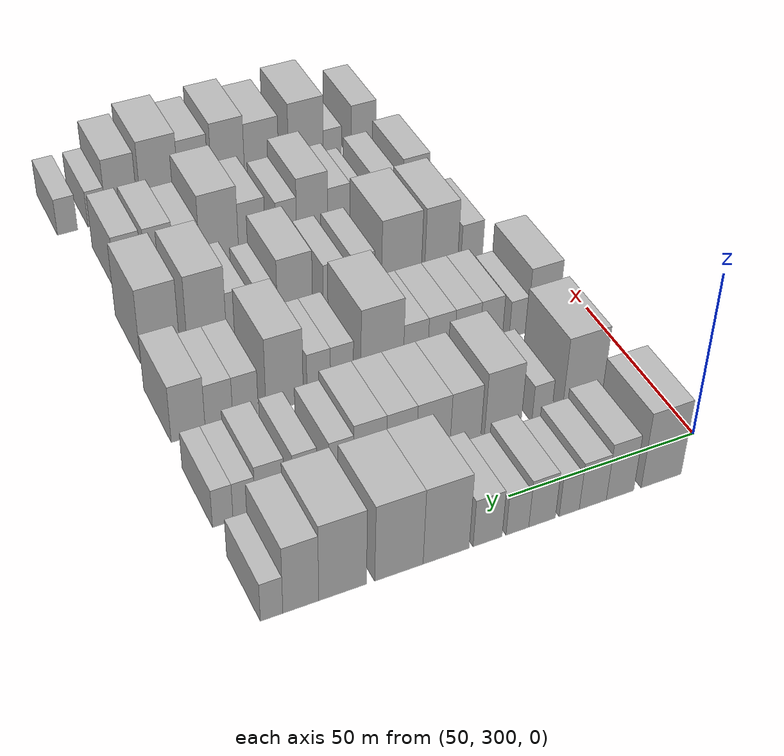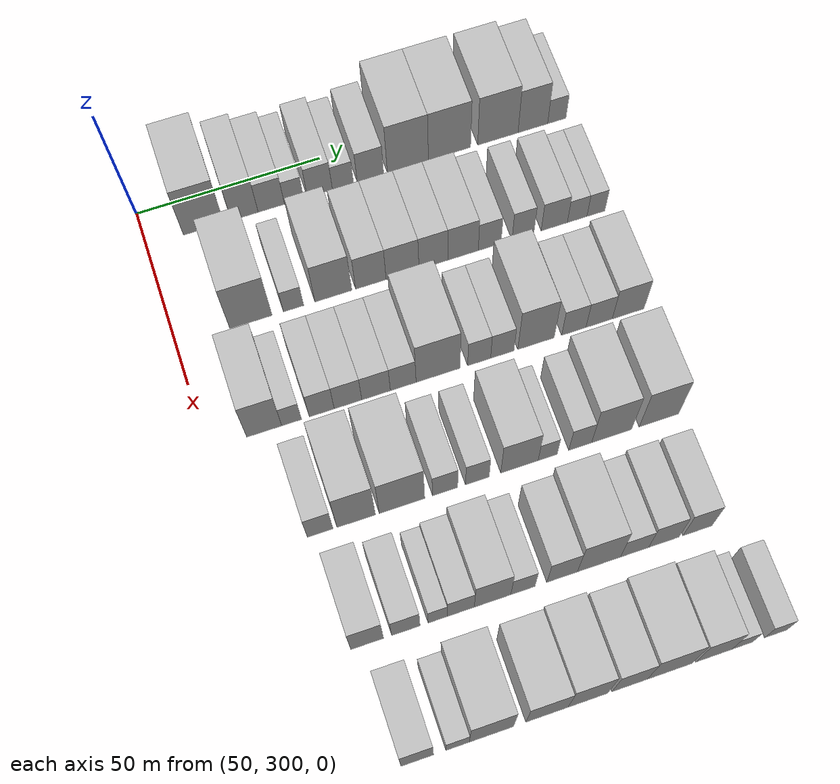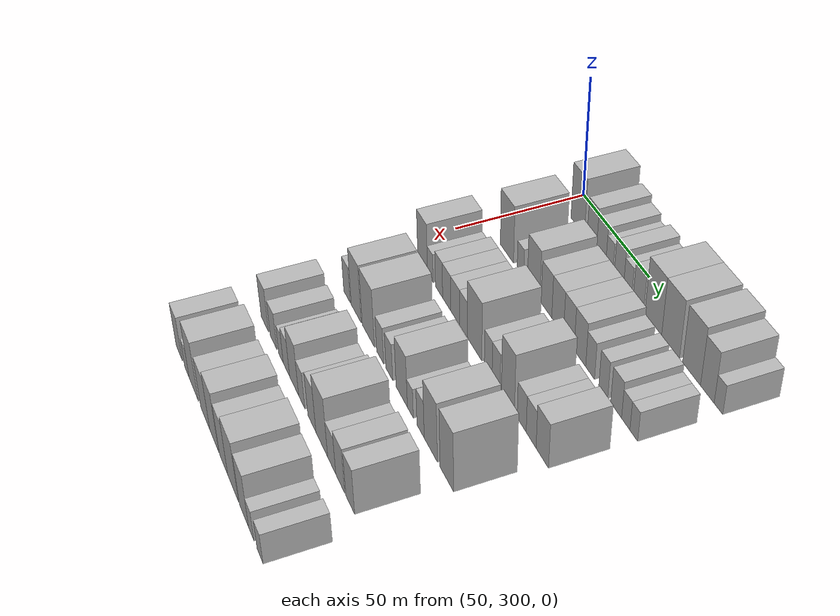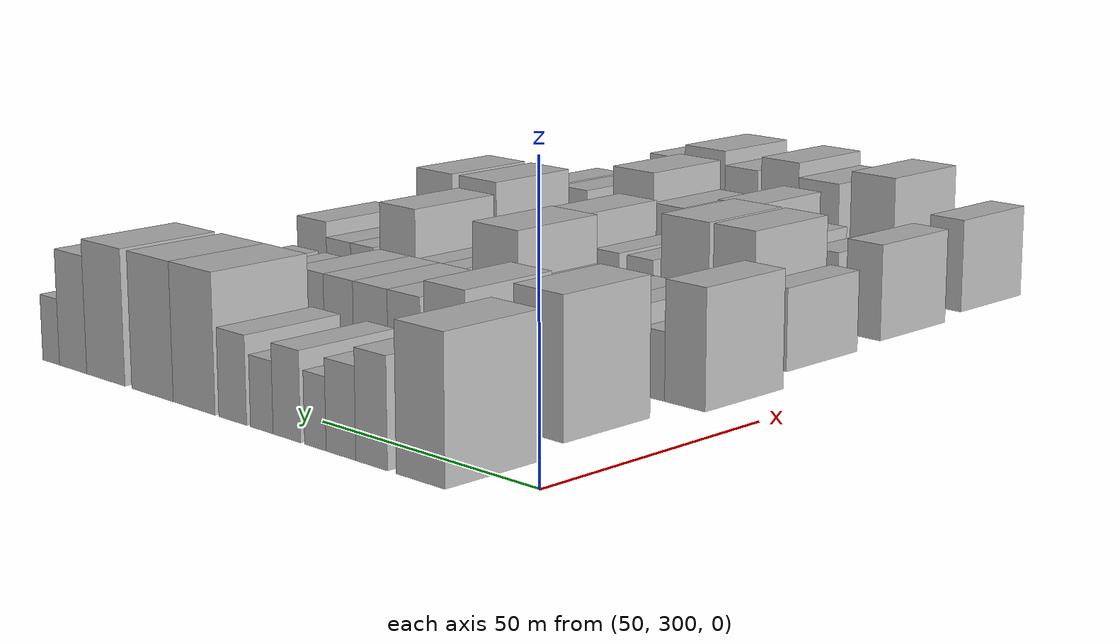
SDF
<sdf version="1.6">
 <world name="default">
  <model name="building_94">
   <static>1</static>
   <pose>50.0000 315.3072 0 0.000000 0.000000 0.000000</pose>
   <link name="link">
    <pose>0 0 12.00 0 0 0</pose>
    <collision name="collision"><geometry><box><size>20.0000 10.8532 24.0000</size></box></geometry></collision>
    <visual name="visual">
     <cast_shadows>0</cast_shadows>
     <geometry><box><size>20.0000 10.8532 24.0000</size></box></geometry>
     <material>
      <script>
       <uri>model://HANNAS_wall/materials/scripts</uri>
       <uri>model://HANNAS_wall/materials/textures</uri>
       <name>vrc/HANNAS_wall</name>
      </script>
     </material>
    </visual>
   </link>
  </model>
  <model name="building_95">
   <static>1</static>
   <pose>50.0000 326.4010 0 0.000000 0.000000 0.000000</pose>
   <link name="link">
    <pose>0 0 9.00 0 0 0</pose>
    <collision name="collision"><geometry><box><size>20.0000 7.3344 18.0000</size></box></geometry></collision>
    <visual name="visual">
     <cast_shadows>0</cast_shadows>
     <geometry><box><size>20.0000 7.3344 18.0000</size></box></geometry>
     <material>
      <script>
       <uri>model://HANNAS_wall/materials/scripts</uri>
       <uri>model://HANNAS_wall/materials/textures</uri>
       <name>vrc/HANNAS_wall</name>
      </script>
     </material>
    </visual>
   </link>
  </model>
  <model name="building_96">
   <static>1</static>
   <pose>50.0000 333.6415 0 0.000000 0.000000 0.000000</pose>
   <link name="link">
    <pose>0 0 7.50 0 0 0</pose>
    <collision name="collision"><geometry><box><size>20.0000 7.1467 15.0000</size></box></geometry></collision>
    <visual name="visual">
     <cast_shadows>0</cast_shadows>
     <geometry><box><size>20.0000 7.1467 15.0000</size></box></geometry>
     <material>
      <script>
       <uri>model://HANNAS_wall/materials/scripts</uri>
       <uri>model://HANNAS_wall/materials/textures</uri>
       <name>vrc/HANNAS_wall</name>
      </script>
     </material>
    </visual>
   </link>
  </model>
  <model name="building_97">
   <static>1</static>
   <pose>50.0000 339.8409 0 0.000000 0.000000 0.000000</pose>
   <link name="link">
    <pose>0 0 6.00 0 0 0</pose>
    <collision name="collision"><geometry><box><size>20.0000 5.2520 12.0000</size></box></geometry></collision>
    <visual name="visual">
     <cast_shadows>0</cast_shadows>
     <geometry><box><size>20.0000 5.2520 12.0000</size></box></geometry>
     <material>
      <script>
       <uri>model://HANNAS_wall/materials/scripts</uri>
       <uri>model://HANNAS_wall/materials/textures</uri>
       <name>vrc/HANNAS_wall</name>
      </script>
     </material>
    </visual>
   </link>
  </model>
  <model name="building_98">
   <static>1</static>
   <pose>50.0000 346.9055 0 0.000000 0.000000 0.000000</pose>
   <link name="link">
    <pose>0 0 7.50 0 0 0</pose>
    <collision name="collision"><geometry><box><size>20.0000 6.8771 15.0000</size></box></geometry></collision>
    <visual name="visual">
     <cast_shadows>0</cast_shadows>
     <geometry><box><size>20.0000 6.8771 15.0000</size></box></geometry>
     <material>
      <script>
       <uri>model://HANNAS_wall/materials/scripts</uri>
       <uri>model://HANNAS_wall/materials/textures</uri>
       <name>vrc/HANNAS_wall</name>
      </script>
     </material>
    </visual>
   </link>
  </model>
  <model name="building_99">
   <static>1</static>
   <pose>50.0000 353.2531 0 0.000000 0.000000 0.000000</pose>
   <link name="link">
    <pose>0 0 6.00 0 0 0</pose>
    <collision name="collision"><geometry><box><size>20.0000 5.8181 12.0000</size></box></geometry></collision>
    <visual name="visual">
     <cast_shadows>0</cast_shadows>
     <geometry><box><size>20.0000 5.8181 12.0000</size></box></geometry>
     <material>
      <script>
       <uri>model://HANNAS_wall/materials/scripts</uri>
       <uri>model://HANNAS_wall/materials/textures</uri>
       <name>vrc/HANNAS_wall</name>
      </script>
     </material>
    </visual>
   </link>
  </model>
  <model name="building_100">
   <static>1</static>
   <pose>50.0000 360.8320 0 0.000000 0.000000 0.000000</pose>
   <link name="link">
    <pose>0 0 7.50 0 0 0</pose>
    <collision name="collision"><geometry><box><size>20.0000 7.3398 15.0000</size></box></geometry></collision>
    <visual name="visual">
     <cast_shadows>0</cast_shadows>
     <geometry><box><size>20.0000 7.3398 15.0000</size></box></geometry>
     <material>
      <script>
       <uri>model://HANNAS_wall/materials/scripts</uri>
       <uri>model://HANNAS_wall/materials/textures</uri>
       <name>vrc/HANNAS_wall</name>
      </script>
     </material>
    </visual>
   </link>
  </model>
  <model name="building_101">
   <static>1</static>
   <pose>50.0000 371.2204 0 0.000000 0.000000 0.000000</pose>
   <link name="link">
    <pose>0 0 12.00 0 0 0</pose>
    <collision name="collision"><geometry><box><size>20.0000 11.4370 24.0000</size></box></geometry></collision>
    <visual name="visual">
     <cast_shadows>0</cast_shadows>
     <geometry><box><size>20.0000 11.4370 24.0000</size></box></geometry>
     <material>
      <script>
       <uri>model://HANNAS_wall/materials/scripts</uri>
       <uri>model://HANNAS_wall/materials/textures</uri>
       <name>vrc/HANNAS_wall</name>
      </script>
     </material>
    </visual>
   </link>
  </model>
  <model name="building_102">
   <static>1</static>
   <pose>50.0000 382.8452 0 0.000000 0.000000 0.000000</pose>
   <link name="link">
    <pose>0 0 12.00 0 0 0</pose>
    <collision name="collision"><geometry><box><size>20.0000 11.8124 24.0000</size></box></geometry></collision>
    <visual name="visual">
     <cast_shadows>0</cast_shadows>
     <geometry><box><size>20.0000 11.8124 24.0000</size></box></geometry>
     <material>
      <script>
       <uri>model://HANNAS_wall/materials/scripts</uri>
       <uri>model://HANNAS_wall/materials/textures</uri>
       <name>vrc/HANNAS_wall</name>
      </script>
     </material>
    </visual>
   </link>
  </model>
  <model name="building_103">
   <static>1</static>
   <pose>50.0000 396.4413 0 0.000000 0.000000 0.000000</pose>
   <link name="link">
    <pose>0 0 12.00 0 0 0</pose>
    <collision name="collision"><geometry><box><size>20.0000 11.3799 24.0000</size></box></geometry></collision>
    <visual name="visual">
     <cast_shadows>0</cast_shadows>
     <geometry><box><size>20.0000 11.3799 24.0000</size></box></geometry>
     <material>
      <script>
       <uri>model://HANNAS_wall/materials/scripts</uri>
       <uri>model://HANNAS_wall/materials/textures</uri>
       <name>vrc/HANNAS_wall</name>
      </script>
     </material>
    </visual>
   </link>
  </model>
  <model name="building_104">
   <static>1</static>
   <pose>50.0000 406.3316 0 0.000000 0.000000 0.000000</pose>
   <link name="link">
    <pose>0 0 10.50 0 0 0</pose>
    <collision name="collision"><geometry><box><size>20.0000 8.4007 21.0000</size></box></geometry></collision>
    <visual name="visual">
     <cast_shadows>0</cast_shadows>
     <geometry><box><size>20.0000 8.4007 21.0000</size></box></geometry>
     <material>
      <script>
       <uri>model://HANNAS_wall/materials/scripts</uri>
       <uri>model://HANNAS_wall/materials/textures</uri>
       <name>vrc/HANNAS_wall</name>
      </script>
     </material>
    </visual>
   </link>
  </model>
  <model name="building_105">
   <static>1</static>
   <pose>50.0000 413.1444 0 0.000000 0.000000 0.000000</pose>
   <link name="link">
    <pose>0 0 6.00 0 0 0</pose>
    <collision name="collision"><geometry><box><size>20.0000 5.2250 12.0000</size></box></geometry></collision>
    <visual name="visual">
     <cast_shadows>0</cast_shadows>
     <geometry><box><size>20.0000 5.2250 12.0000</size></box></geometry>
     <material>
      <script>
       <uri>model://HANNAS_wall/materials/scripts</uri>
       <uri>model://HANNAS_wall/materials/textures</uri>
       <name>vrc/HANNAS_wall</name>
      </script>
     </material>
    </visual>
   </link>
  </model>
  <model name="building_207">
   <static>1</static>
   <pose>79.0000 319.5909 0 0.000000 0.000000 0.000000</pose>
   <link name="link">
    <pose>0 0 12.00 0 0 0</pose>
    <collision name="collision"><geometry><box><size>20.0000 11.1686 24.0000</size></box></geometry></collision>
    <visual name="visual">
     <cast_shadows>0</cast_shadows>
     <geometry><box><size>20.0000 11.1686 24.0000</size></box></geometry>
     <material>
      <script>
       <uri>model://HANNAS_wall/materials/scripts</uri>
       <uri>model://HANNAS_wall/materials/textures</uri>
       <name>vrc/HANNAS_wall</name>
      </script>
     </material>
    </visual>
   </link>
  </model>
  <model name="building_208">
   <static>1</static>
   <pose>79.0000 330.8688 0 0.000000 0.000000 0.000000</pose>
   <link name="link">
    <pose>0 0 6.00 0 0 0</pose>
    <collision name="collision"><geometry><box><size>20.0000 5.3871 12.0000</size></box></geometry></collision>
    <visual name="visual">
     <cast_shadows>0</cast_shadows>
     <geometry><box><size>20.0000 5.3871 12.0000</size></box></geometry>
     <material>
      <script>
       <uri>model://HANNAS_wall/materials/scripts</uri>
       <uri>model://HANNAS_wall/materials/textures</uri>
       <name>vrc/HANNAS_wall</name>
      </script>
     </material>
    </visual>
   </link>
  </model>
  <model name="building_209">
   <static>1</static>
   <pose>79.0000 341.5053 0 0.000000 0.000000 0.000000</pose>
   <link name="link">
    <pose>0 0 10.50 0 0 0</pose>
    <collision name="collision"><geometry><box><size>20.0000 9.8861 21.0000</size></box></geometry></collision>
    <visual name="visual">
     <cast_shadows>0</cast_shadows>
     <geometry><box><size>20.0000 9.8861 21.0000</size></box></geometry>
     <material>
      <script>
       <uri>model://HANNAS_wall/materials/scripts</uri>
       <uri>model://HANNAS_wall/materials/textures</uri>
       <name>vrc/HANNAS_wall</name>
      </script>
     </material>
    </visual>
   </link>
  </model>
  <model name="building_210">
   <static>1</static>
   <pose>79.0000 351.5568 0 0.000000 0.000000 0.000000</pose>
   <link name="link">
    <pose>0 0 9.00 0 0 0</pose>
    <collision name="collision"><geometry><box><size>20.0000 8.2168 18.0000</size></box></geometry></collision>
    <visual name="visual">
     <cast_shadows>0</cast_shadows>
     <geometry><box><size>20.0000 8.2168 18.0000</size></box></geometry>
     <material>
      <script>
       <uri>model://HANNAS_wall/materials/scripts</uri>
       <uri>model://HANNAS_wall/materials/textures</uri>
       <name>vrc/HANNAS_wall</name>
      </script>
     </material>
    </visual>
   </link>
  </model>
  <model name="building_211">
   <static>1</static>
   <pose>79.0000 360.1121 0 0.000000 0.000000 0.000000</pose>
   <link name="link">
    <pose>0 0 9.00 0 0 0</pose>
    <collision name="collision"><geometry><box><size>20.0000 8.8938 18.0000</size></box></geometry></collision>
    <visual name="visual">
     <cast_shadows>0</cast_shadows>
     <geometry><box><size>20.0000 8.8938 18.0000</size></box></geometry>
     <material>
      <script>
       <uri>model://HANNAS_wall/materials/scripts</uri>
       <uri>model://HANNAS_wall/materials/textures</uri>
       <name>vrc/HANNAS_wall</name>
      </script>
     </material>
    </visual>
   </link>
  </model>
  <model name="building_212">
   <static>1</static>
   <pose>79.0000 368.4648 0 0.000000 0.000000 0.000000</pose>
   <link name="link">
    <pose>0 0 9.00 0 0 0</pose>
    <collision name="collision"><geometry><box><size>20.0000 7.8117 18.0000</size></box></geometry></collision>
    <visual name="visual">
     <cast_shadows>0</cast_shadows>
     <geometry><box><size>20.0000 7.8117 18.0000</size></box></geometry>
     <material>
      <script>
       <uri>model://HANNAS_wall/materials/scripts</uri>
       <uri>model://HANNAS_wall/materials/textures</uri>
       <name>vrc/HANNAS_wall</name>
      </script>
     </material>
    </visual>
   </link>
  </model>
  <model name="building_213">
   <static>1</static>
   <pose>79.0000 376.5377 0 0.000000 0.000000 0.000000</pose>
   <link name="link">
    <pose>0 0 9.00 0 0 0</pose>
    <collision name="collision"><geometry><box><size>20.0000 8.3341 18.0000</size></box></geometry></collision>
    <visual name="visual">
     <cast_shadows>0</cast_shadows>
     <geometry><box><size>20.0000 8.3341 18.0000</size></box></geometry>
     <material>
      <script>
       <uri>model://HANNAS_wall/materials/scripts</uri>
       <uri>model://HANNAS_wall/materials/textures</uri>
       <name>vrc/HANNAS_wall</name>
      </script>
     </material>
    </visual>
   </link>
  </model>
  <model name="building_214">
   <static>1</static>
   <pose>79.0000 383.8276 0 0.000000 0.000000 0.000000</pose>
   <link name="link">
    <pose>0 0 7.50 0 0 0</pose>
    <collision name="collision"><geometry><box><size>20.0000 6.2457 15.0000</size></box></geometry></collision>
    <visual name="visual">
     <cast_shadows>0</cast_shadows>
     <geometry><box><size>20.0000 6.2457 15.0000</size></box></geometry>
     <material>
      <script>
       <uri>model://HANNAS_wall/materials/scripts</uri>
       <uri>model://HANNAS_wall/materials/textures</uri>
       <name>vrc/HANNAS_wall</name>
      </script>
     </material>
    </visual>
   </link>
  </model>
  <model name="building_215">
   <static>1</static>
   <pose>79.0000 392.9814 0 0.000000 0.000000 0.000000</pose>
   <link name="link">
    <pose>0 0 7.50 0 0 0</pose>
    <collision name="collision"><geometry><box><size>20.0000 6.0618 15.0000</size></box></geometry></collision>
    <visual name="visual">
     <cast_shadows>0</cast_shadows>
     <geometry><box><size>20.0000 6.0618 15.0000</size></box></geometry>
     <material>
      <script>
       <uri>model://HANNAS_wall/materials/scripts</uri>
       <uri>model://HANNAS_wall/materials/textures</uri>
       <name>vrc/HANNAS_wall</name>
      </script>
     </material>
    </visual>
   </link>
  </model>
  <model name="building_216">
   <static>1</static>
   <pose>79.0000 401.6380 0 0.000000 0.000000 0.000000</pose>
   <link name="link">
    <pose>0 0 7.50 0 0 0</pose>
    <collision name="collision"><geometry><box><size>20.0000 7.2514 15.0000</size></box></geometry></collision>
    <visual name="visual">
     <cast_shadows>0</cast_shadows>
     <geometry><box><size>20.0000 7.2514 15.0000</size></box></geometry>
     <material>
      <script>
       <uri>model://HANNAS_wall/materials/scripts</uri>
       <uri>model://HANNAS_wall/materials/textures</uri>
       <name>vrc/HANNAS_wall</name>
      </script>
     </material>
    </visual>
   </link>
  </model>
  <model name="building_217">
   <static>1</static>
   <pose>79.0000 407.9836 0 0.000000 0.000000 0.000000</pose>
   <link name="link">
    <pose>0 0 6.00 0 0 0</pose>
    <collision name="collision"><geometry><box><size>20.0000 5.4398 12.0000</size></box></geometry></collision>
    <visual name="visual">
     <cast_shadows>0</cast_shadows>
     <geometry><box><size>20.0000 5.4398 12.0000</size></box></geometry>
     <material>
      <script>
       <uri>model://HANNAS_wall/materials/scripts</uri>
       <uri>model://HANNAS_wall/materials/textures</uri>
       <name>vrc/HANNAS_wall</name>
      </script>
     </material>
    </visual>
   </link>
  </model>
  <model name="building_218">
   <static>1</static>
   <pose>79.0000 413.2075 0 0.000000 0.000000 0.000000</pose>
   <link name="link">
    <pose>0 0 6.00 0 0 0</pose>
    <collision name="collision"><geometry><box><size>20.0000 5.0081 12.0000</size></box></geometry></collision>
    <visual name="visual">
     <cast_shadows>0</cast_shadows>
     <geometry><box><size>20.0000 5.0081 12.0000</size></box></geometry>
     <material>
      <script>
       <uri>model://HANNAS_wall/materials/scripts</uri>
       <uri>model://HANNAS_wall/materials/textures</uri>
       <name>vrc/HANNAS_wall</name>
      </script>
     </material>
    </visual>
   </link>
  </model>
  <model name="building_309">
   <static>1</static>
   <pose>108.0000 314.4812 0 0.000000 0.000000 0.000000</pose>
   <link name="link">
    <pose>0 0 10.50 0 0 0</pose>
    <collision name="collision"><geometry><box><size>20.0000 9.0125 21.0000</size></box></geometry></collision>
    <visual name="visual">
     <cast_shadows>0</cast_shadows>
     <geometry><box><size>20.0000 9.0125 21.0000</size></box></geometry>
     <material>
      <script>
       <uri>model://HANNAS_wall/materials/scripts</uri>
       <uri>model://HANNAS_wall/materials/textures</uri>
       <name>vrc/HANNAS_wall</name>
      </script>
     </material>
    </visual>
   </link>
  </model>
  <model name="building_310">
   <static>1</static>
   <pose>108.0000 321.5475 0 0.000000 0.000000 0.000000</pose>
   <link name="link">
    <pose>0 0 6.00 0 0 0</pose>
    <collision name="collision"><geometry><box><size>20.0000 5.1199 12.0000</size></box></geometry></collision>
    <visual name="visual">
     <cast_shadows>0</cast_shadows>
     <geometry><box><size>20.0000 5.1199 12.0000</size></box></geometry>
     <material>
      <script>
       <uri>model://HANNAS_wall/materials/scripts</uri>
       <uri>model://HANNAS_wall/materials/textures</uri>
       <name>vrc/HANNAS_wall</name>
      </script>
     </material>
    </visual>
   </link>
  </model>
  <model name="building_311">
   <static>1</static>
   <pose>108.0000 329.3476 0 0.000000 0.000000 0.000000</pose>
   <link name="link">
    <pose>0 0 7.50 0 0 0</pose>
    <collision name="collision"><geometry><box><size>20.0000 6.4803 15.0000</size></box></geometry></collision>
    <visual name="visual">
     <cast_shadows>0</cast_shadows>
     <geometry><box><size>20.0000 6.4803 15.0000</size></box></geometry>
     <material>
      <script>
       <uri>model://HANNAS_wall/materials/scripts</uri>
       <uri>model://HANNAS_wall/materials/textures</uri>
       <name>vrc/HANNAS_wall</name>
      </script>
     </material>
    </visual>
   </link>
  </model>
  <model name="building_312">
   <static>1</static>
   <pose>108.0000 336.1856 0 0.000000 0.000000 0.000000</pose>
   <link name="link">
    <pose>0 0 7.50 0 0 0</pose>
    <collision name="collision"><geometry><box><size>20.0000 7.1957 15.0000</size></box></geometry></collision>
    <visual name="visual">
     <cast_shadows>0</cast_shadows>
     <geometry><box><size>20.0000 7.1957 15.0000</size></box></geometry>
     <material>
      <script>
       <uri>model://HANNAS_wall/materials/scripts</uri>
       <uri>model://HANNAS_wall/materials/textures</uri>
       <name>vrc/HANNAS_wall</name>
      </script>
     </material>
    </visual>
   </link>
  </model>
  <model name="building_313">
   <static>1</static>
   <pose>108.0000 343.5210 0 0.000000 0.000000 0.000000</pose>
   <link name="link">
    <pose>0 0 7.50 0 0 0</pose>
    <collision name="collision"><geometry><box><size>20.0000 7.4751 15.0000</size></box></geometry></collision>
    <visual name="visual">
     <cast_shadows>0</cast_shadows>
     <geometry><box><size>20.0000 7.4751 15.0000</size></box></geometry>
     <material>
      <script>
       <uri>model://HANNAS_wall/materials/scripts</uri>
       <uri>model://HANNAS_wall/materials/textures</uri>
       <name>vrc/HANNAS_wall</name>
      </script>
     </material>
    </visual>
   </link>
  </model>
  <model name="building_314">
   <static>1</static>
   <pose>108.0000 350.6441 0 0.000000 0.000000 0.000000</pose>
   <link name="link">
    <pose>0 0 7.50 0 0 0</pose>
    <collision name="collision"><geometry><box><size>20.0000 6.7710 15.0000</size></box></geometry></collision>
    <visual name="visual">
     <cast_shadows>0</cast_shadows>
     <geometry><box><size>20.0000 6.7710 15.0000</size></box></geometry>
     <material>
      <script>
       <uri>model://HANNAS_wall/materials/scripts</uri>
       <uri>model://HANNAS_wall/materials/textures</uri>
       <name>vrc/HANNAS_wall</name>
      </script>
     </material>
    </visual>
   </link>
  </model>
  <model name="building_315">
   <static>1</static>
   <pose>108.0000 359.8457 0 0.000000 0.000000 0.000000</pose>
   <link name="link">
    <pose>0 0 12.00 0 0 0</pose>
    <collision name="collision"><geometry><box><size>20.0000 11.6322 24.0000</size></box></geometry></collision>
    <visual name="visual">
     <cast_shadows>0</cast_shadows>
     <geometry><box><size>20.0000 11.6322 24.0000</size></box></geometry>
     <material>
      <script>
       <uri>model://HANNAS_wall/materials/scripts</uri>
       <uri>model://HANNAS_wall/materials/textures</uri>
       <name>vrc/HANNAS_wall</name>
      </script>
     </material>
    </visual>
   </link>
  </model>
  <model name="building_316">
   <static>1</static>
   <pose>108.0000 370.7196 0 0.000000 0.000000 0.000000</pose>
   <link name="link">
    <pose>0 0 7.50 0 0 0</pose>
    <collision name="collision"><geometry><box><size>20.0000 6.1156 15.0000</size></box></geometry></collision>
    <visual name="visual">
     <cast_shadows>0</cast_shadows>
     <geometry><box><size>20.0000 6.1156 15.0000</size></box></geometry>
     <material>
      <script>
       <uri>model://HANNAS_wall/materials/scripts</uri>
       <uri>model://HANNAS_wall/materials/textures</uri>
       <name>vrc/HANNAS_wall</name>
      </script>
     </material>
    </visual>
   </link>
  </model>
  <model name="building_317">
   <static>1</static>
   <pose>108.0000 376.9043 0 0.000000 0.000000 0.000000</pose>
   <link name="link">
    <pose>0 0 7.50 0 0 0</pose>
    <collision name="collision"><geometry><box><size>20.0000 6.2539 15.0000</size></box></geometry></collision>
    <visual name="visual">
     <cast_shadows>0</cast_shadows>
     <geometry><box><size>20.0000 6.2539 15.0000</size></box></geometry>
     <material>
      <script>
       <uri>model://HANNAS_wall/materials/scripts</uri>
       <uri>model://HANNAS_wall/materials/textures</uri>
       <name>vrc/HANNAS_wall</name>
      </script>
     </material>
    </visual>
   </link>
  </model>
  <model name="building_318">
   <static>1</static>
   <pose>108.0000 385.9369 0 0.000000 0.000000 0.000000</pose>
   <link name="link">
    <pose>0 0 12.00 0 0 0</pose>
    <collision name="collision"><geometry><box><size>20.0000 9.8113 24.0000</size></box></geometry></collision>
    <visual name="visual">
     <cast_shadows>0</cast_shadows>
     <geometry><box><size>20.0000 9.8113 24.0000</size></box></geometry>
     <material>
      <script>
       <uri>model://HANNAS_wall/materials/scripts</uri>
       <uri>model://HANNAS_wall/materials/textures</uri>
       <name>vrc/HANNAS_wall</name>
      </script>
     </material>
    </visual>
   </link>
  </model>
  <model name="building_319">
   <static>1</static>
   <pose>108.0000 396.1304 0 0.000000 0.000000 0.000000</pose>
   <link name="link">
    <pose>0 0 7.50 0 0 0</pose>
    <collision name="collision"><geometry><box><size>20.0000 6.5757 15.0000</size></box></geometry></collision>
    <visual name="visual">
     <cast_shadows>0</cast_shadows>
     <geometry><box><size>20.0000 6.5757 15.0000</size></box></geometry>
     <material>
      <script>
       <uri>model://HANNAS_wall/materials/scripts</uri>
       <uri>model://HANNAS_wall/materials/textures</uri>
       <name>vrc/HANNAS_wall</name>
      </script>
     </material>
    </visual>
   </link>
  </model>
  <model name="building_320">
   <static>1</static>
   <pose>108.0000 402.9683 0 0.000000 0.000000 0.000000</pose>
   <link name="link">
    <pose>0 0 7.50 0 0 0</pose>
    <collision name="collision"><geometry><box><size>20.0000 7.1003 15.0000</size></box></geometry></collision>
    <visual name="visual">
     <cast_shadows>0</cast_shadows>
     <geometry><box><size>20.0000 7.1003 15.0000</size></box></geometry>
     <material>
      <script>
       <uri>model://HANNAS_wall/materials/scripts</uri>
       <uri>model://HANNAS_wall/materials/textures</uri>
       <name>vrc/HANNAS_wall</name>
      </script>
     </material>
    </visual>
   </link>
  </model>
  <model name="building_321">
   <static>1</static>
   <pose>108.0000 410.8604 0 0.000000 0.000000 0.000000</pose>
   <link name="link">
    <pose>0 0 9.00 0 0 0</pose>
    <collision name="collision"><geometry><box><size>20.0000 8.6838 18.0000</size></box></geometry></collision>
    <visual name="visual">
     <cast_shadows>0</cast_shadows>
     <geometry><box><size>20.0000 8.6838 18.0000</size></box></geometry>
     <material>
      <script>
       <uri>model://HANNAS_wall/materials/scripts</uri>
       <uri>model://HANNAS_wall/materials/textures</uri>
       <name>vrc/HANNAS_wall</name>
      </script>
     </material>
    </visual>
   </link>
  </model>
  <model name="building_424">
   <static>1</static>
   <pose>137.0000 319.9346 0 0.000000 0.000000 0.000000</pose>
   <link name="link">
    <pose>0 0 7.50 0 0 0</pose>
    <collision name="collision"><geometry><box><size>20.0000 6.4653 15.0000</size></box></geometry></collision>
    <visual name="visual">
     <cast_shadows>0</cast_shadows>
     <geometry><box><size>20.0000 6.4653 15.0000</size></box></geometry>
     <material>
      <script>
       <uri>model://HANNAS_wall/materials/scripts</uri>
       <uri>model://HANNAS_wall/materials/textures</uri>
       <name>vrc/HANNAS_wall</name>
      </script>
     </material>
    </visual>
   </link>
  </model>
  <model name="building_425">
   <static>1</static>
   <pose>137.0000 329.0333 0 0.000000 0.000000 0.000000</pose>
   <link name="link">
    <pose>0 0 12.00 0 0 0</pose>
    <collision name="collision"><geometry><box><size>20.0000 9.7320 24.0000</size></box></geometry></collision>
    <visual name="visual">
     <cast_shadows>0</cast_shadows>
     <geometry><box><size>20.0000 9.7320 24.0000</size></box></geometry>
     <material>
      <script>
       <uri>model://HANNAS_wall/materials/scripts</uri>
       <uri>model://HANNAS_wall/materials/textures</uri>
       <name>vrc/HANNAS_wall</name>
      </script>
     </material>
    </visual>
   </link>
  </model>
  <model name="building_426">
   <static>1</static>
   <pose>137.0000 340.6959 0 0.000000 0.000000 0.000000</pose>
   <link name="link">
    <pose>0 0 12.00 0 0 0</pose>
    <collision name="collision"><geometry><box><size>20.0000 11.5932 24.0000</size></box></geometry></collision>
    <visual name="visual">
     <cast_shadows>0</cast_shadows>
     <geometry><box><size>20.0000 11.5932 24.0000</size></box></geometry>
     <material>
      <script>
       <uri>model://HANNAS_wall/materials/scripts</uri>
       <uri>model://HANNAS_wall/materials/textures</uri>
       <name>vrc/HANNAS_wall</name>
      </script>
     </material>
    </visual>
   </link>
  </model>
  <model name="building_427">
   <static>1</static>
   <pose>137.0000 351.7303 0 0.000000 0.000000 0.000000</pose>
   <link name="link">
    <pose>0 0 7.50 0 0 0</pose>
    <collision name="collision"><geometry><box><size>20.0000 6.4757 15.0000</size></box></geometry></collision>
    <visual name="visual">
     <cast_shadows>0</cast_shadows>
     <geometry><box><size>20.0000 6.4757 15.0000</size></box></geometry>
     <material>
      <script>
       <uri>model://HANNAS_wall/materials/scripts</uri>
       <uri>model://HANNAS_wall/materials/textures</uri>
       <name>vrc/HANNAS_wall</name>
      </script>
     </material>
    </visual>
   </link>
  </model>
  <model name="building_428">
   <static>1</static>
   <pose>137.0000 360.0314 0 0.000000 0.000000 0.000000</pose>
   <link name="link">
    <pose>0 0 7.50 0 0 0</pose>
    <collision name="collision"><geometry><box><size>20.0000 6.1264 15.0000</size></box></geometry></collision>
    <visual name="visual">
     <cast_shadows>0</cast_shadows>
     <geometry><box><size>20.0000 6.1264 15.0000</size></box></geometry>
     <material>
      <script>
       <uri>model://HANNAS_wall/materials/scripts</uri>
       <uri>model://HANNAS_wall/materials/textures</uri>
       <name>vrc/HANNAS_wall</name>
      </script>
     </material>
    </visual>
   </link>
  </model>
  <model name="building_429">
   <static>1</static>
   <pose>137.0000 370.9648 0 0.000000 0.000000 0.000000</pose>
   <link name="link">
    <pose>0 0 10.50 0 0 0</pose>
    <collision name="collision"><geometry><box><size>20.0000 9.7404 21.0000</size></box></geometry></collision>
    <visual name="visual">
     <cast_shadows>0</cast_shadows>
     <geometry><box><size>20.0000 9.7404 21.0000</size></box></geometry>
     <material>
      <script>
       <uri>model://HANNAS_wall/materials/scripts</uri>
       <uri>model://HANNAS_wall/materials/textures</uri>
       <name>vrc/HANNAS_wall</name>
      </script>
     </material>
    </visual>
   </link>
  </model>
  <model name="building_430">
   <static>1</static>
   <pose>137.0000 378.3452 0 0.000000 0.000000 0.000000</pose>
   <link name="link">
    <pose>0 0 6.00 0 0 0</pose>
    <collision name="collision"><geometry><box><size>20.0000 5.0204 12.0000</size></box></geometry></collision>
    <visual name="visual">
     <cast_shadows>0</cast_shadows>
     <geometry><box><size>20.0000 5.0204 12.0000</size></box></geometry>
     <material>
      <script>
       <uri>model://HANNAS_wall/materials/scripts</uri>
       <uri>model://HANNAS_wall/materials/textures</uri>
       <name>vrc/HANNAS_wall</name>
      </script>
     </material>
    </visual>
   </link>
  </model>
  <model name="building_431">
   <static>1</static>
   <pose>137.0000 386.8645 0 0.000000 0.000000 0.000000</pose>
   <link name="link">
    <pose>0 0 7.50 0 0 0</pose>
    <collision name="collision"><geometry><box><size>20.0000 6.0182 15.0000</size></box></geometry></collision>
    <visual name="visual">
     <cast_shadows>0</cast_shadows>
     <geometry><box><size>20.0000 6.0182 15.0000</size></box></geometry>
     <material>
      <script>
       <uri>model://HANNAS_wall/materials/scripts</uri>
       <uri>model://HANNAS_wall/materials/textures</uri>
       <name>vrc/HANNAS_wall</name>
      </script>
     </material>
    </visual>
   </link>
  </model>
  <model name="building_432">
   <static>1</static>
   <pose>137.0000 395.1611 0 0.000000 0.000000 0.000000</pose>
   <link name="link">
    <pose>0 0 12.00 0 0 0</pose>
    <collision name="collision"><geometry><box><size>20.0000 10.5749 24.0000</size></box></geometry></collision>
    <visual name="visual">
     <cast_shadows>0</cast_shadows>
     <geometry><box><size>20.0000 10.5749 24.0000</size></box></geometry>
     <material>
      <script>
       <uri>model://HANNAS_wall/materials/scripts</uri>
       <uri>model://HANNAS_wall/materials/textures</uri>
       <name>vrc/HANNAS_wall</name>
      </script>
     </material>
    </visual>
   </link>
  </model>
  <model name="building_433">
   <static>1</static>
   <pose>137.0000 407.7022 0 0.000000 0.000000 0.000000</pose>
   <link name="link">
    <pose>0 0 12.00 0 0 0</pose>
    <collision name="collision"><geometry><box><size>20.0000 10.5073 24.0000</size></box></geometry></collision>
    <visual name="visual">
     <cast_shadows>0</cast_shadows>
     <geometry><box><size>20.0000 10.5073 24.0000</size></box></geometry>
     <material>
      <script>
       <uri>model://HANNAS_wall/materials/scripts</uri>
       <uri>model://HANNAS_wall/materials/textures</uri>
       <name>vrc/HANNAS_wall</name>
      </script>
     </material>
    </visual>
   </link>
  </model>
  <model name="building_538">
   <static>1</static>
   <pose>166.0000 322.4469 0 0.000000 0.000000 0.000000</pose>
   <link name="link">
    <pose>0 0 9.00 0 0 0</pose>
    <collision name="collision"><geometry><box><size>20.0000 8.0774 18.0000</size></box></geometry></collision>
    <visual name="visual">
     <cast_shadows>0</cast_shadows>
     <geometry><box><size>20.0000 8.0774 18.0000</size></box></geometry>
     <material>
      <script>
       <uri>model://HANNAS_wall/materials/scripts</uri>
       <uri>model://HANNAS_wall/materials/textures</uri>
       <name>vrc/HANNAS_wall</name>
      </script>
     </material>
    </visual>
   </link>
  </model>
  <model name="building_539">
   <static>1</static>
   <pose>166.0000 332.0104 0 0.000000 0.000000 0.000000</pose>
   <link name="link">
    <pose>0 0 7.50 0 0 0</pose>
    <collision name="collision"><geometry><box><size>20.0000 7.0496 15.0000</size></box></geometry></collision>
    <visual name="visual">
     <cast_shadows>0</cast_shadows>
     <geometry><box><size>20.0000 7.0496 15.0000</size></box></geometry>
     <material>
      <script>
       <uri>model://HANNAS_wall/materials/scripts</uri>
       <uri>model://HANNAS_wall/materials/textures</uri>
       <name>vrc/HANNAS_wall</name>
      </script>
     </material>
    </visual>
   </link>
  </model>
  <model name="building_540">
   <static>1</static>
   <pose>166.0000 339.9408 0 0.000000 0.000000 0.000000</pose>
   <link name="link">
    <pose>0 0 6.00 0 0 0</pose>
    <collision name="collision"><geometry><box><size>20.0000 4.8112 12.0000</size></box></geometry></collision>
    <visual name="visual">
     <cast_shadows>0</cast_shadows>
     <geometry><box><size>20.0000 4.8112 12.0000</size></box></geometry>
     <material>
      <script>
       <uri>model://HANNAS_wall/materials/scripts</uri>
       <uri>model://HANNAS_wall/materials/textures</uri>
       <name>vrc/HANNAS_wall</name>
      </script>
     </material>
    </visual>
   </link>
  </model>
  <model name="building_541">
   <static>1</static>
   <pose>166.0000 345.7029 0 0.000000 0.000000 0.000000</pose>
   <link name="link">
    <pose>0 0 7.50 0 0 0</pose>
    <collision name="collision"><geometry><box><size>20.0000 6.7132 15.0000</size></box></geometry></collision>
    <visual name="visual">
     <cast_shadows>0</cast_shadows>
     <geometry><box><size>20.0000 6.7132 15.0000</size></box></geometry>
     <material>
      <script>
       <uri>model://HANNAS_wall/materials/scripts</uri>
       <uri>model://HANNAS_wall/materials/textures</uri>
       <name>vrc/HANNAS_wall</name>
      </script>
     </material>
    </visual>
   </link>
  </model>
  <model name="building_542">
   <static>1</static>
   <pose>166.0000 353.6546 0 0.000000 0.000000 0.000000</pose>
   <link name="link">
    <pose>0 0 10.50 0 0 0</pose>
    <collision name="collision"><geometry><box><size>20.0000 9.1901 21.0000</size></box></geometry></collision>
    <visual name="visual">
     <cast_shadows>0</cast_shadows>
     <geometry><box><size>20.0000 9.1901 21.0000</size></box></geometry>
     <material>
      <script>
       <uri>model://HANNAS_wall/materials/scripts</uri>
       <uri>model://HANNAS_wall/materials/textures</uri>
       <name>vrc/HANNAS_wall</name>
      </script>
     </material>
    </visual>
   </link>
  </model>
  <model name="building_543">
   <static>1</static>
   <pose>166.0000 361.3114 0 0.000000 0.000000 0.000000</pose>
   <link name="link">
    <pose>0 0 7.50 0 0 0</pose>
    <collision name="collision"><geometry><box><size>20.0000 6.1234 15.0000</size></box></geometry></collision>
    <visual name="visual">
     <cast_shadows>0</cast_shadows>
     <geometry><box><size>20.0000 6.1234 15.0000</size></box></geometry>
     <material>
      <script>
       <uri>model://HANNAS_wall/materials/scripts</uri>
       <uri>model://HANNAS_wall/materials/textures</uri>
       <name>vrc/HANNAS_wall</name>
      </script>
     </material>
    </visual>
   </link>
  </model>
  <model name="building_544">
   <static>1</static>
   <pose>166.0000 371.2568 0 0.000000 0.000000 0.000000</pose>
   <link name="link">
    <pose>0 0 9.00 0 0 0</pose>
    <collision name="collision"><geometry><box><size>20.0000 7.7674 18.0000</size></box></geometry></collision>
    <visual name="visual">
     <cast_shadows>0</cast_shadows>
     <geometry><box><size>20.0000 7.7674 18.0000</size></box></geometry>
     <material>
      <script>
       <uri>model://HANNAS_wall/materials/scripts</uri>
       <uri>model://HANNAS_wall/materials/textures</uri>
       <name>vrc/HANNAS_wall</name>
      </script>
     </material>
    </visual>
   </link>
  </model>
  <model name="building_545">
   <static>1</static>
   <pose>166.0000 380.6367 0 0.000000 0.000000 0.000000</pose>
   <link name="link">
    <pose>0 0 12.00 0 0 0</pose>
    <collision name="collision"><geometry><box><size>20.0000 10.9924 24.0000</size></box></geometry></collision>
    <visual name="visual">
     <cast_shadows>0</cast_shadows>
     <geometry><box><size>20.0000 10.9924 24.0000</size></box></geometry>
     <material>
      <script>
       <uri>model://HANNAS_wall/materials/scripts</uri>
       <uri>model://HANNAS_wall/materials/textures</uri>
       <name>vrc/HANNAS_wall</name>
      </script>
     </material>
    </visual>
   </link>
  </model>
  <model name="building_546">
   <static>1</static>
   <pose>166.0000 389.7863 0 0.000000 0.000000 0.000000</pose>
   <link name="link">
    <pose>0 0 7.50 0 0 0</pose>
    <collision name="collision"><geometry><box><size>20.0000 7.3068 15.0000</size></box></geometry></collision>
    <visual name="visual">
     <cast_shadows>0</cast_shadows>
     <geometry><box><size>20.0000 7.3068 15.0000</size></box></geometry>
     <material>
      <script>
       <uri>model://HANNAS_wall/materials/scripts</uri>
       <uri>model://HANNAS_wall/materials/textures</uri>
       <name>vrc/HANNAS_wall</name>
      </script>
     </material>
    </visual>
   </link>
  </model>
  <model name="building_547">
   <static>1</static>
   <pose>166.0000 397.3866 0 0.000000 0.000000 0.000000</pose>
   <link name="link">
    <pose>0 0 9.00 0 0 0</pose>
    <collision name="collision"><geometry><box><size>20.0000 7.8939 18.0000</size></box></geometry></collision>
    <visual name="visual">
     <cast_shadows>0</cast_shadows>
     <geometry><box><size>20.0000 7.8939 18.0000</size></box></geometry>
     <material>
      <script>
       <uri>model://HANNAS_wall/materials/scripts</uri>
       <uri>model://HANNAS_wall/materials/textures</uri>
       <name>vrc/HANNAS_wall</name>
      </script>
     </material>
    </visual>
   </link>
  </model>
  <model name="building_548">
   <static>1</static>
   <pose>166.0000 406.1196 0 0.000000 0.000000 0.000000</pose>
   <link name="link">
    <pose>0 0 9.00 0 0 0</pose>
    <collision name="collision"><geometry><box><size>20.0000 7.5720 18.0000</size></box></geometry></collision>
    <visual name="visual">
     <cast_shadows>0</cast_shadows>
     <geometry><box><size>20.0000 7.5720 18.0000</size></box></geometry>
     <material>
      <script>
       <uri>model://HANNAS_wall/materials/scripts</uri>
       <uri>model://HANNAS_wall/materials/textures</uri>
       <name>vrc/HANNAS_wall</name>
      </script>
     </material>
    </visual>
   </link>
  </model>
  <model name="building_651">
   <static>1</static>
   <pose>195.0000 325.0942 0 0.000000 0.000000 0.000000</pose>
   <link name="link">
    <pose>0 0 9.00 0 0 0</pose>
    <collision name="collision"><geometry><box><size>20.0000 7.8314 18.0000</size></box></geometry></collision>
    <visual name="visual">
     <cast_shadows>0</cast_shadows>
     <geometry><box><size>20.0000 7.8314 18.0000</size></box></geometry>
     <material>
      <script>
       <uri>model://HANNAS_wall/materials/scripts</uri>
       <uri>model://HANNAS_wall/materials/textures</uri>
       <name>vrc/HANNAS_wall</name>
      </script>
     </material>
    </visual>
   </link>
  </model>
  <model name="building_652">
   <static>1</static>
   <pose>195.0000 334.8562 0 0.000000 0.000000 0.000000</pose>
   <link name="link">
    <pose>0 0 6.00 0 0 0</pose>
    <collision name="collision"><geometry><box><size>20.0000 5.6926 12.0000</size></box></geometry></collision>
    <visual name="visual">
     <cast_shadows>0</cast_shadows>
     <geometry><box><size>20.0000 5.6926 12.0000</size></box></geometry>
     <material>
      <script>
       <uri>model://HANNAS_wall/materials/scripts</uri>
       <uri>model://HANNAS_wall/materials/textures</uri>
       <name>vrc/HANNAS_wall</name>
      </script>
     </material>
    </visual>
   </link>
  </model>
  <model name="building_653">
   <static>1</static>
   <pose>195.0000 343.0979 0 0.000000 0.000000 0.000000</pose>
   <link name="link">
    <pose>0 0 12.00 0 0 0</pose>
    <collision name="collision"><geometry><box><size>20.0000 10.7907 24.0000</size></box></geometry></collision>
    <visual name="visual">
     <cast_shadows>0</cast_shadows>
     <geometry><box><size>20.0000 10.7907 24.0000</size></box></geometry>
     <material>
      <script>
       <uri>model://HANNAS_wall/materials/scripts</uri>
       <uri>model://HANNAS_wall/materials/textures</uri>
       <name>vrc/HANNAS_wall</name>
      </script>
     </material>
    </visual>
   </link>
  </model>
  <model name="building_654">
   <static>1</static>
   <pose>195.0000 356.6725 0 0.000000 0.000000 0.000000</pose>
   <link name="link">
    <pose>0 0 10.50 0 0 0</pose>
    <collision name="collision"><geometry><box><size>20.0000 10.3585 21.0000</size></box></geometry></collision>
    <visual name="visual">
     <cast_shadows>0</cast_shadows>
     <geometry><box><size>20.0000 10.3585 21.0000</size></box></geometry>
     <material>
      <script>
       <uri>model://HANNAS_wall/materials/scripts</uri>
       <uri>model://HANNAS_wall/materials/textures</uri>
       <name>vrc/HANNAS_wall</name>
      </script>
     </material>
    </visual>
   </link>
  </model>
  <model name="building_655">
   <static>1</static>
   <pose>195.0000 366.7961 0 0.000000 0.000000 0.000000</pose>
   <link name="link">
    <pose>0 0 12.00 0 0 0</pose>
    <collision name="collision"><geometry><box><size>20.0000 9.8887 24.0000</size></box></geometry></collision>
    <visual name="visual">
     <cast_shadows>0</cast_shadows>
     <geometry><box><size>20.0000 9.8887 24.0000</size></box></geometry>
     <material>
      <script>
       <uri>model://HANNAS_wall/materials/scripts</uri>
       <uri>model://HANNAS_wall/materials/textures</uri>
       <name>vrc/HANNAS_wall</name>
      </script>
     </material>
    </visual>
   </link>
  </model>
  <model name="building_656">
   <static>1</static>
   <pose>195.0000 377.1721 0 0.000000 0.000000 0.000000</pose>
   <link name="link">
    <pose>0 0 10.50 0 0 0</pose>
    <collision name="collision"><geometry><box><size>20.0000 8.8633 21.0000</size></box></geometry></collision>
    <visual name="visual">
     <cast_shadows>0</cast_shadows>
     <geometry><box><size>20.0000 8.8633 21.0000</size></box></geometry>
     <material>
      <script>
       <uri>model://HANNAS_wall/materials/scripts</uri>
       <uri>model://HANNAS_wall/materials/textures</uri>
       <name>vrc/HANNAS_wall</name>
      </script>
     </material>
    </visual>
   </link>
  </model>
  <model name="building_657">
   <static>1</static>
   <pose>195.0000 387.2038 0 0.000000 0.000000 0.000000</pose>
   <link name="link">
    <pose>0 0 12.00 0 0 0</pose>
    <collision name="collision"><geometry><box><size>20.0000 11.2000 24.0000</size></box></geometry></collision>
    <visual name="visual">
     <cast_shadows>0</cast_shadows>
     <geometry><box><size>20.0000 11.2000 24.0000</size></box></geometry>
     <material>
      <script>
       <uri>model://HANNAS_wall/materials/scripts</uri>
       <uri>model://HANNAS_wall/materials/textures</uri>
       <name>vrc/HANNAS_wall</name>
      </script>
     </material>
    </visual>
   </link>
  </model>
  <model name="building_658">
   <static>1</static>
   <pose>195.0000 398.3563 0 0.000000 0.000000 0.000000</pose>
   <link name="link">
    <pose>0 0 10.50 0 0 0</pose>
    <collision name="collision"><geometry><box><size>20.0000 9.1051 21.0000</size></box></geometry></collision>
    <visual name="visual">
     <cast_shadows>0</cast_shadows>
     <geometry><box><size>20.0000 9.1051 21.0000</size></box></geometry>
     <material>
      <script>
       <uri>model://HANNAS_wall/materials/scripts</uri>
       <uri>model://HANNAS_wall/materials/textures</uri>
       <name>vrc/HANNAS_wall</name>
      </script>
     </material>
    </visual>
   </link>
  </model>
  <model name="building_659">
   <static>1</static>
   <pose>195.0000 405.5734 0 0.000000 0.000000 0.000000</pose>
   <link name="link">
    <pose>0 0 6.00 0 0 0</pose>
    <collision name="collision"><geometry><box><size>20.0000 5.3290 12.0000</size></box></geometry></collision>
    <visual name="visual">
     <cast_shadows>0</cast_shadows>
     <geometry><box><size>20.0000 5.3290 12.0000</size></box></geometry>
     <material>
      <script>
       <uri>model://HANNAS_wall/materials/scripts</uri>
       <uri>model://HANNAS_wall/materials/textures</uri>
       <name>vrc/HANNAS_wall</name>
      </script>
     </material>
    </visual>
   </link>
  </model>
  <model name="building_660">
   <static>1</static>
   <pose>195.0000 414.1081 0 0.000000 0.000000 0.000000</pose>
   <link name="link">
    <pose>0 0 6.00 0 0 0</pose>
    <collision name="collision"><geometry><box><size>20.0000 5.7404 12.0000</size></box></geometry></collision>
    <visual name="visual">
     <cast_shadows>0</cast_shadows>
     <geometry><box><size>20.0000 5.7404 12.0000</size></box></geometry>
     <material>
      <script>
       <uri>model://HANNAS_wall/materials/scripts</uri>
       <uri>model://HANNAS_wall/materials/textures</uri>
       <name>vrc/HANNAS_wall</name>
      </script>
     </material>
    </visual>
   </link>
  </model>
 </world>
</sdf>
